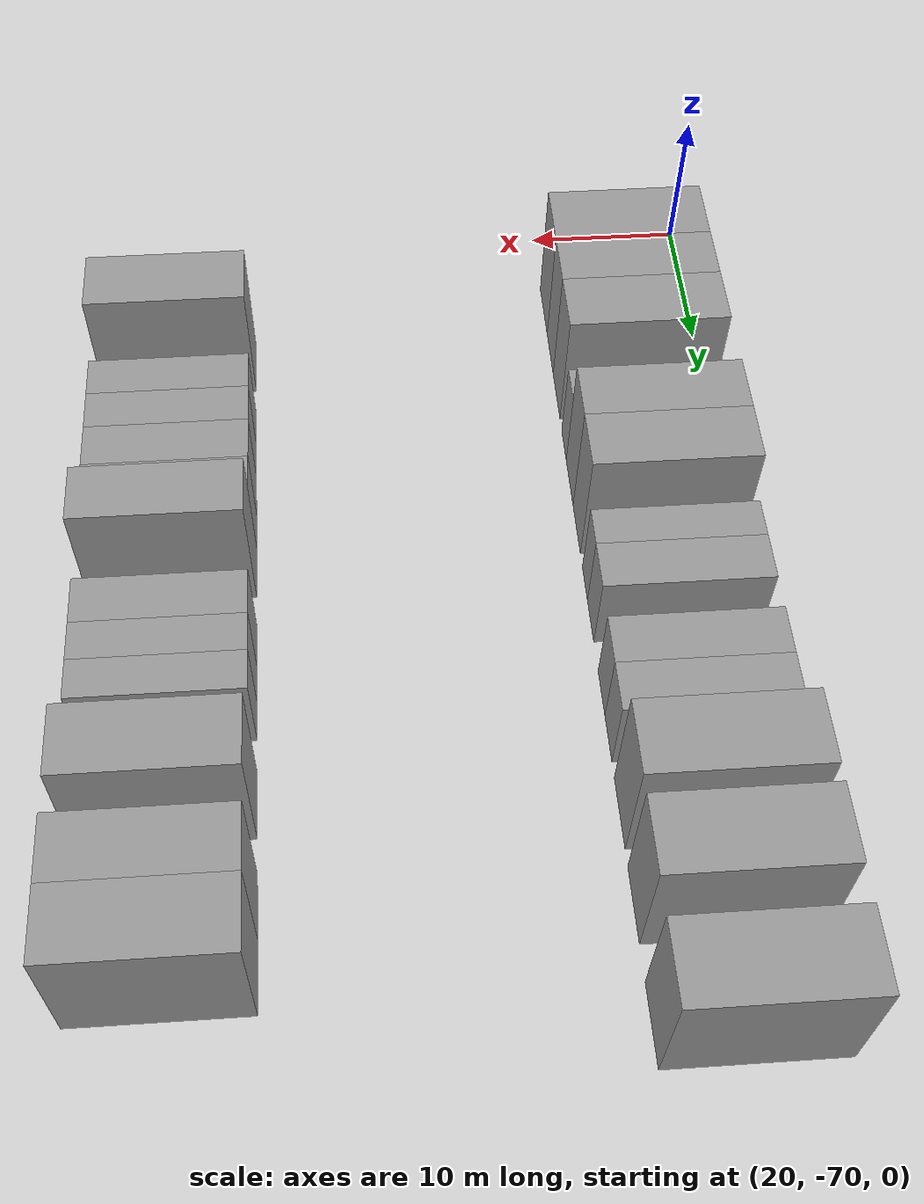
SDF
<sdf version="1.6">
 <world name="default">
  <model name="building_41">
   <static>1</static>
   <pose>25.0000 -63.0192 0 0.000000 0.000000 0.000000</pose>
   <link name="link">
    <pose>0 0 4.50 0 0 0</pose>
    <collision name="collision"><geometry><box><size>10.0000 4.3170 9.0000</size></box></geometry></collision>
    <visual name="visual">
     <cast_shadows>0</cast_shadows>
     <geometry><box><size>10.0000 4.3170 9.0000</size></box></geometry>
     <material>
      <script>
       <uri>model://grey_wall/materials/scripts</uri>
       <uri>model://grey_wall/materials/textures</uri>
       <name>vrc/grey_wall</name>
      </script>
     </material>
    </visual>
   </link>
  </model>
  <model name="building_42">
   <static>1</static>
   <pose>25.0000 -59.0494 0 0.000000 0.000000 0.000000</pose>
   <link name="link">
    <pose>0 0 4.50 0 0 0</pose>
    <collision name="collision"><geometry><box><size>10.0000 3.6226 9.0000</size></box></geometry></collision>
    <visual name="visual">
     <cast_shadows>0</cast_shadows>
     <geometry><box><size>10.0000 3.6226 9.0000</size></box></geometry>
     <material>
      <script>
       <uri>model://grey_wall/materials/scripts</uri>
       <uri>model://grey_wall/materials/textures</uri>
       <name>vrc/grey_wall</name>
      </script>
     </material>
    </visual>
   </link>
  </model>
  <model name="building_43">
   <static>1</static>
   <pose>25.0000 -55.2728 0 0.000000 0.000000 0.000000</pose>
   <link name="link">
    <pose>0 0 4.50 0 0 0</pose>
    <collision name="collision"><geometry><box><size>10.0000 3.9306 9.0000</size></box></geometry></collision>
    <visual name="visual">
     <cast_shadows>0</cast_shadows>
     <geometry><box><size>10.0000 3.9306 9.0000</size></box></geometry>
     <material>
      <script>
       <uri>model://grey_wall/materials/scripts</uri>
       <uri>model://grey_wall/materials/textures</uri>
       <name>vrc/grey_wall</name>
      </script>
     </material>
    </visual>
   </link>
  </model>
  <model name="building_44">
   <static>1</static>
   <pose>25.0000 -51.0687 0 0.000000 0.000000 0.000000</pose>
   <link name="link">
    <pose>0 0 3.00 0 0 0</pose>
    <collision name="collision"><geometry><box><size>10.0000 2.4778 6.0000</size></box></geometry></collision>
    <visual name="visual">
     <cast_shadows>0</cast_shadows>
     <geometry><box><size>10.0000 2.4778 6.0000</size></box></geometry>
     <material>
      <script>
       <uri>model://grey_wall/materials/scripts</uri>
       <uri>model://grey_wall/materials/textures</uri>
       <name>vrc/grey_wall</name>
      </script>
     </material>
    </visual>
   </link>
  </model>
  <model name="building_45">
   <static>1</static>
   <pose>25.0000 -48.0067 0 0.000000 0.000000 0.000000</pose>
   <link name="link">
    <pose>0 0 4.50 0 0 0</pose>
    <collision name="collision"><geometry><box><size>10.0000 3.6462 9.0000</size></box></geometry></collision>
    <visual name="visual">
     <cast_shadows>0</cast_shadows>
     <geometry><box><size>10.0000 3.6462 9.0000</size></box></geometry>
     <material>
      <script>
       <uri>model://grey_wall/materials/scripts</uri>
       <uri>model://grey_wall/materials/textures</uri>
       <name>vrc/grey_wall</name>
      </script>
     </material>
    </visual>
   </link>
  </model>
  <model name="building_46">
   <static>1</static>
   <pose>25.0000 -44.3082 0 0.000000 0.000000 0.000000</pose>
   <link name="link">
    <pose>0 0 4.50 0 0 0</pose>
    <collision name="collision"><geometry><box><size>10.0000 3.7508 9.0000</size></box></geometry></collision>
    <visual name="visual">
     <cast_shadows>0</cast_shadows>
     <geometry><box><size>10.0000 3.7508 9.0000</size></box></geometry>
     <material>
      <script>
       <uri>model://grey_wall/materials/scripts</uri>
       <uri>model://grey_wall/materials/textures</uri>
       <name>vrc/grey_wall</name>
      </script>
     </material>
    </visual>
   </link>
  </model>
  <model name="building_47">
   <static>1</static>
   <pose>25.0000 -40.2187 0 0.000000 0.000000 0.000000</pose>
   <link name="link">
    <pose>0 0 3.00 0 0 0</pose>
    <collision name="collision"><geometry><box><size>10.0000 2.4282 6.0000</size></box></geometry></collision>
    <visual name="visual">
     <cast_shadows>0</cast_shadows>
     <geometry><box><size>10.0000 2.4282 6.0000</size></box></geometry>
     <material>
      <script>
       <uri>model://grey_wall/materials/scripts</uri>
       <uri>model://grey_wall/materials/textures</uri>
       <name>vrc/grey_wall</name>
      </script>
     </material>
    </visual>
   </link>
  </model>
  <model name="building_48">
   <static>1</static>
   <pose>25.0000 -37.5237 0 0.000000 0.000000 0.000000</pose>
   <link name="link">
    <pose>0 0 3.00 0 0 0</pose>
    <collision name="collision"><geometry><box><size>10.0000 2.9617 6.0000</size></box></geometry></collision>
    <visual name="visual">
     <cast_shadows>0</cast_shadows>
     <geometry><box><size>10.0000 2.9617 6.0000</size></box></geometry>
     <material>
      <script>
       <uri>model://grey_wall/materials/scripts</uri>
       <uri>model://grey_wall/materials/textures</uri>
       <name>vrc/grey_wall</name>
      </script>
     </material>
    </visual>
   </link>
  </model>
  <model name="building_49">
   <static>1</static>
   <pose>25.0000 -32.5608 0 0.000000 0.000000 0.000000</pose>
   <link name="link">
    <pose>0 0 3.00 0 0 0</pose>
    <collision name="collision"><geometry><box><size>10.0000 2.9642 6.0000</size></box></geometry></collision>
    <visual name="visual">
     <cast_shadows>0</cast_shadows>
     <geometry><box><size>10.0000 2.9642 6.0000</size></box></geometry>
     <material>
      <script>
       <uri>model://grey_wall/materials/scripts</uri>
       <uri>model://grey_wall/materials/textures</uri>
       <name>vrc/grey_wall</name>
      </script>
     </material>
    </visual>
   </link>
  </model>
  <model name="building_50">
   <static>1</static>
   <pose>25.0000 -29.5989 0 0.000000 0.000000 0.000000</pose>
   <link name="link">
    <pose>0 0 3.00 0 0 0</pose>
    <collision name="collision"><geometry><box><size>10.0000 2.9595 6.0000</size></box></geometry></collision>
    <visual name="visual">
     <cast_shadows>0</cast_shadows>
     <geometry><box><size>10.0000 2.9595 6.0000</size></box></geometry>
     <material>
      <script>
       <uri>model://grey_wall/materials/scripts</uri>
       <uri>model://grey_wall/materials/textures</uri>
       <name>vrc/grey_wall</name>
      </script>
     </material>
    </visual>
   </link>
  </model>
  <model name="building_51">
   <static>1</static>
   <pose>25.0000 -24.9625 0 0.000000 0.000000 0.000000</pose>
   <link name="link">
    <pose>0 0 4.50 0 0 0</pose>
    <collision name="collision"><geometry><box><size>10.0000 4.3133 9.0000</size></box></geometry></collision>
    <visual name="visual">
     <cast_shadows>0</cast_shadows>
     <geometry><box><size>10.0000 4.3133 9.0000</size></box></geometry>
     <material>
      <script>
       <uri>model://grey_wall/materials/scripts</uri>
       <uri>model://grey_wall/materials/textures</uri>
       <name>vrc/grey_wall</name>
      </script>
     </material>
    </visual>
   </link>
  </model>
  <model name="building_52">
   <static>1</static>
   <pose>25.0000 -19.6324 0 0.000000 0.000000 0.000000</pose>
   <link name="link">
    <pose>0 0 4.50 0 0 0</pose>
    <collision name="collision"><geometry><box><size>10.0000 4.3469 9.0000</size></box></geometry></collision>
    <visual name="visual">
     <cast_shadows>0</cast_shadows>
     <geometry><box><size>10.0000 4.3469 9.0000</size></box></geometry>
     <material>
      <script>
       <uri>model://grey_wall/materials/scripts</uri>
       <uri>model://grey_wall/materials/textures</uri>
       <name>vrc/grey_wall</name>
      </script>
     </material>
    </visual>
   </link>
  </model>
  <model name="building_53">
   <static>1</static>
   <pose>25.0000 -13.2129 0 0.000000 0.000000 0.000000</pose>
   <link name="link">
    <pose>0 0 4.50 0 0 0</pose>
    <collision name="collision"><geometry><box><size>10.0000 4.4921 9.0000</size></box></geometry></collision>
    <visual name="visual">
     <cast_shadows>0</cast_shadows>
     <geometry><box><size>10.0000 4.4921 9.0000</size></box></geometry>
     <material>
      <script>
       <uri>model://grey_wall/materials/scripts</uri>
       <uri>model://grey_wall/materials/textures</uri>
       <name>vrc/grey_wall</name>
      </script>
     </material>
    </visual>
   </link>
  </model>
  <model name="building_145">
   <static>1</static>
   <pose>55.0000 -59.0582 0 0.000000 0.000000 0.000000</pose>
   <link name="link">
    <pose>0 0 4.50 0 0 0</pose>
    <collision name="collision"><geometry><box><size>10.0000 4.1027 9.0000</size></box></geometry></collision>
    <visual name="visual">
     <cast_shadows>0</cast_shadows>
     <geometry><box><size>10.0000 4.1027 9.0000</size></box></geometry>
     <material>
      <script>
       <uri>model://grey_wall/materials/scripts</uri>
       <uri>model://grey_wall/materials/textures</uri>
       <name>vrc/grey_wall</name>
      </script>
     </material>
    </visual>
   </link>
  </model>
  <model name="building_146">
   <static>1</static>
   <pose>55.0000 -53.6602 0 0.000000 0.000000 0.000000</pose>
   <link name="link">
    <pose>0 0 3.00 0 0 0</pose>
    <collision name="collision"><geometry><box><size>10.0000 2.6934 6.0000</size></box></geometry></collision>
    <visual name="visual">
     <cast_shadows>0</cast_shadows>
     <geometry><box><size>10.0000 2.6934 6.0000</size></box></geometry>
     <material>
      <script>
       <uri>model://grey_wall/materials/scripts</uri>
       <uri>model://grey_wall/materials/textures</uri>
       <name>vrc/grey_wall</name>
      </script>
     </material>
    </visual>
   </link>
  </model>
  <model name="building_147">
   <static>1</static>
   <pose>55.0000 -50.9841 0 0.000000 0.000000 0.000000</pose>
   <link name="link">
    <pose>0 0 3.00 0 0 0</pose>
    <collision name="collision"><geometry><box><size>10.0000 2.6587 6.0000</size></box></geometry></collision>
    <visual name="visual">
     <cast_shadows>0</cast_shadows>
     <geometry><box><size>10.0000 2.6587 6.0000</size></box></geometry>
     <material>
      <script>
       <uri>model://grey_wall/materials/scripts</uri>
       <uri>model://grey_wall/materials/textures</uri>
       <name>vrc/grey_wall</name>
      </script>
     </material>
    </visual>
   </link>
  </model>
  <model name="building_148">
   <static>1</static>
   <pose>55.0000 -48.1979 0 0.000000 0.000000 0.000000</pose>
   <link name="link">
    <pose>0 0 3.00 0 0 0</pose>
    <collision name="collision"><geometry><box><size>10.0000 2.9138 6.0000</size></box></geometry></collision>
    <visual name="visual">
     <cast_shadows>0</cast_shadows>
     <geometry><box><size>10.0000 2.9138 6.0000</size></box></geometry>
     <material>
      <script>
       <uri>model://grey_wall/materials/scripts</uri>
       <uri>model://grey_wall/materials/textures</uri>
       <name>vrc/grey_wall</name>
      </script>
     </material>
    </visual>
   </link>
  </model>
  <model name="building_149">
   <static>1</static>
   <pose>55.0000 -45.4753 0 0.000000 0.000000 0.000000</pose>
   <link name="link">
    <pose>0 0 3.00 0 0 0</pose>
    <collision name="collision"><geometry><box><size>10.0000 2.5314 6.0000</size></box></geometry></collision>
    <visual name="visual">
     <cast_shadows>0</cast_shadows>
     <geometry><box><size>10.0000 2.5314 6.0000</size></box></geometry>
     <material>
      <script>
       <uri>model://grey_wall/materials/scripts</uri>
       <uri>model://grey_wall/materials/textures</uri>
       <name>vrc/grey_wall</name>
      </script>
     </material>
    </visual>
   </link>
  </model>
  <model name="building_150">
   <static>1</static>
   <pose>55.0000 -42.3779 0 0.000000 0.000000 0.000000</pose>
   <link name="link">
    <pose>0 0 4.50 0 0 0</pose>
    <collision name="collision"><geometry><box><size>10.0000 3.6634 9.0000</size></box></geometry></collision>
    <visual name="visual">
     <cast_shadows>0</cast_shadows>
     <geometry><box><size>10.0000 3.6634 9.0000</size></box></geometry>
     <material>
      <script>
       <uri>model://grey_wall/materials/scripts</uri>
       <uri>model://grey_wall/materials/textures</uri>
       <name>vrc/grey_wall</name>
      </script>
     </material>
    </visual>
   </link>
  </model>
  <model name="building_151">
   <static>1</static>
   <pose>55.0000 -37.0887 0 0.000000 0.000000 0.000000</pose>
   <link name="link">
    <pose>0 0 3.00 0 0 0</pose>
    <collision name="collision"><geometry><box><size>10.0000 2.9150 6.0000</size></box></geometry></collision>
    <visual name="visual">
     <cast_shadows>0</cast_shadows>
     <geometry><box><size>10.0000 2.9150 6.0000</size></box></geometry>
     <material>
      <script>
       <uri>model://grey_wall/materials/scripts</uri>
       <uri>model://grey_wall/materials/textures</uri>
       <name>vrc/grey_wall</name>
      </script>
     </material>
    </visual>
   </link>
  </model>
  <model name="building_152">
   <static>1</static>
   <pose>55.0000 -34.4295 0 0.000000 0.000000 0.000000</pose>
   <link name="link">
    <pose>0 0 3.00 0 0 0</pose>
    <collision name="collision"><geometry><box><size>10.0000 2.4034 6.0000</size></box></geometry></collision>
    <visual name="visual">
     <cast_shadows>0</cast_shadows>
     <geometry><box><size>10.0000 2.4034 6.0000</size></box></geometry>
     <material>
      <script>
       <uri>model://grey_wall/materials/scripts</uri>
       <uri>model://grey_wall/materials/textures</uri>
       <name>vrc/grey_wall</name>
      </script>
     </material>
    </visual>
   </link>
  </model>
  <model name="building_153">
   <static>1</static>
   <pose>55.0000 -32.0107 0 0.000000 0.000000 0.000000</pose>
   <link name="link">
    <pose>0 0 3.00 0 0 0</pose>
    <collision name="collision"><geometry><box><size>10.0000 2.4341 6.0000</size></box></geometry></collision>
    <visual name="visual">
     <cast_shadows>0</cast_shadows>
     <geometry><box><size>10.0000 2.4341 6.0000</size></box></geometry>
     <material>
      <script>
       <uri>model://grey_wall/materials/scripts</uri>
       <uri>model://grey_wall/materials/textures</uri>
       <name>vrc/grey_wall</name>
      </script>
     </material>
    </visual>
   </link>
  </model>
  <model name="building_154">
   <static>1</static>
   <pose>55.0000 -26.7533 0 0.000000 0.000000 0.000000</pose>
   <link name="link">
    <pose>0 0 4.50 0 0 0</pose>
    <collision name="collision"><geometry><box><size>10.0000 4.0809 9.0000</size></box></geometry></collision>
    <visual name="visual">
     <cast_shadows>0</cast_shadows>
     <geometry><box><size>10.0000 4.0809 9.0000</size></box></geometry>
     <material>
      <script>
       <uri>model://grey_wall/materials/scripts</uri>
       <uri>model://grey_wall/materials/textures</uri>
       <name>vrc/grey_wall</name>
      </script>
     </material>
    </visual>
   </link>
  </model>
  <model name="building_155">
   <static>1</static>
   <pose>55.0000 -20.8819 0 0.000000 0.000000 0.000000</pose>
   <link name="link">
    <pose>0 0 4.50 0 0 0</pose>
    <collision name="collision"><geometry><box><size>10.0000 3.6619 9.0000</size></box></geometry></collision>
    <visual name="visual">
     <cast_shadows>0</cast_shadows>
     <geometry><box><size>10.0000 3.6619 9.0000</size></box></geometry>
     <material>
      <script>
       <uri>model://grey_wall/materials/scripts</uri>
       <uri>model://grey_wall/materials/textures</uri>
       <name>vrc/grey_wall</name>
      </script>
     </material>
    </visual>
   </link>
  </model>
  <model name="building_156">
   <static>1</static>
   <pose>55.0000 -17.0251 0 0.000000 0.000000 0.000000</pose>
   <link name="link">
    <pose>0 0 4.50 0 0 0</pose>
    <collision name="collision"><geometry><box><size>10.0000 4.0517 9.0000</size></box></geometry></collision>
    <visual name="visual">
     <cast_shadows>0</cast_shadows>
     <geometry><box><size>10.0000 4.0517 9.0000</size></box></geometry>
     <material>
      <script>
       <uri>model://grey_wall/materials/scripts</uri>
       <uri>model://grey_wall/materials/textures</uri>
       <name>vrc/grey_wall</name>
      </script>
     </material>
    </visual>
   </link>
  </model>
 </world>
</sdf>
